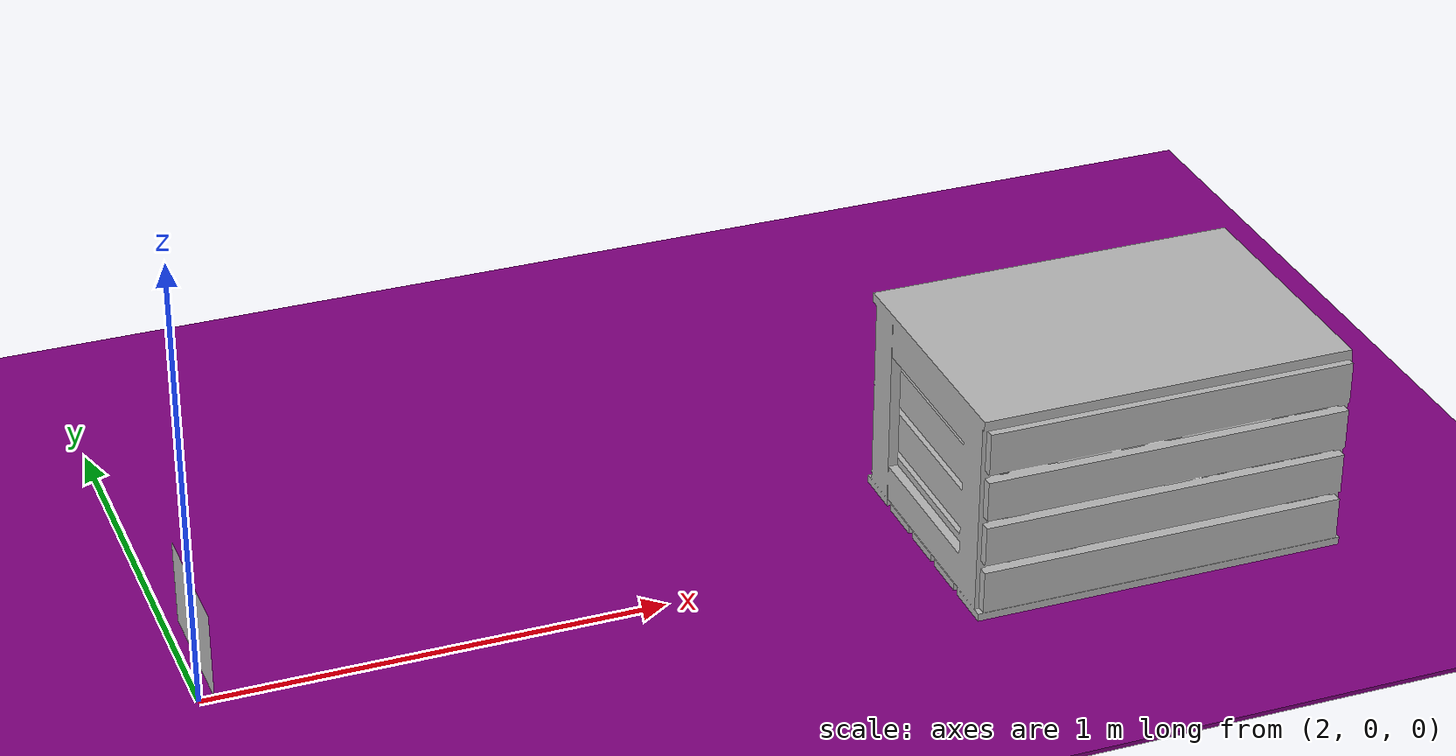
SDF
<?xml version="1.0"?>
<sdf version='1.8'>
  <world name="ground_plane">
    <!-- Basic world setup  -->
    <plugin name='ignition::gazebo::systems::Physics' filename='ignition-gazebo-physics-system' />
    <plugin name='ignition::gazebo::systems::UserCommands' filename='ignition-gazebo-user-commands-system' />
    <plugin name='ignition::gazebo::systems::SceneBroadcaster' filename='ignition-gazebo-scene-broadcaster-system' />
    <plugin name='ignition::gazebo::systems::Contact' filename='ignition-gazebo-contact-system' />
    <plugin name="ignition::gazebo::systems::Sensors" filename="ignition-gazebo-sensors-system" >
      <render_engine>ogre2</render_engine>
    </plugin>
    <plugin name="ignition::gazebo::systems::Imu" filename="ignition-gazebo-imu-system" />
    <light name="sun" type="directional">
      <cast_shadows>1</cast_shadows>
      <pose>0 0 10 0 -0 0</pose>
      <diffuse>0.8 0.8 0.8 1</diffuse>
      <specular>0.2 0.2 0.2 1</specular>
      <attenuation>
        <range>1000</range>
        <constant>0.9</constant>
        <linear>0.01</linear>
        <quadratic>0.001</quadratic>
      </attenuation>
      <direction>-0.5 0.1 -0.9</direction>
    </light>
    <gravity>0 0 -9.81</gravity>
    <magnetic_field>6e-06 2.3e-05 -4.2e-05</magnetic_field>
    <atmosphere type="adiabatic"/>
    <physics name="default_physics" type="ignored">
      <max_step_size>0.01</max_step_size>
      <real_time_factor>1</real_time_factor>
      <real_time_update_rate>100</real_time_update_rate>
    </physics>
    <scene>
      <ambient>1.0 1.0 1.0</ambient>
      <background>0.8 0.8 0.8</background>
      <shadows>1</shadows>
    </scene>

    <!-- Initialise spherical coordinates somewhere -->
    <spherical_coordinates>
      <latitude_deg>0.0</latitude_deg>
      <longitude_deg>0.0</longitude_deg>
      <elevation>10.0</elevation>
      <heading_deg>0</heading_deg>
      <surface_model>EARTH_WGS84</surface_model>
    </spherical_coordinates>

    <!-- Small ground plane with grass texture -->
    <include>
      <uri>
        model://basic_plane
      </uri>
      <name>basic_plane</name>
      <pose>0 0 0 0 0 0</pose>
    </include>

    <include>
      <uri>
        model://small_crate
      </uri>
      <name>small_crate</name>
      <pose>4 0 0 0 0 0</pose>
    </include>

    <include>
      <uri>
        model://aruco_2
      </uri>
      <name>aruco_board</name>
      <pose>2 0 0.2 1.57079632679 0 -1.57079632679</pose>
    </include>

  </world>
</sdf>

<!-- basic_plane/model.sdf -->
<sdf version="1.7">
<model name="basic_plane">
    <static>true</static>
    <link name="link">
        <collision name="collision">
            <geometry>
                <box>
                    <size>10 10 0.01</size>
                </box>
            </geometry>
        </collision>
        <visual name="visual">
            <cast_shadows>false</cast_shadows>
            <geometry>
                <box>
                    <size>10 10 0.01</size>
                </box>
            </geometry>
            <material>
                <ambient>0.5 0.0 0.5 1</ambient>
                <diffuse>0.5 0.0 0.5 1</diffuse>
                <specular>0.2 0.2 0.2 1</specular>
            </material>
        </visual>
    </link>
</model>
</sdf>

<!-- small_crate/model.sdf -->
<sdf version="1.7">
  <model name="small_crate">
    <static>true</static>
    <link name="small_crate_link">
      <collision name="small_crate_collision">
        <geometry>
          <mesh>
            <uri>model://small_crate/small_crate.dae</uri>
            <scale>1 1 1</scale>
          </mesh>
        </geometry>
      </collision>
      <visual name="small_crate_visual">
        <geometry>
          <mesh>
            <uri>model://small_crate/small_crate.dae</uri>
            <scale>1 1 1</scale>
          </mesh>
        </geometry>
      </visual>
    </link>
  </model>
</sdf>

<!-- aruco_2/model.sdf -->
<sdf version="1.7">
  <model name="aruco_2">
    <static>true</static>
    <link name="aruco_2_link">
      <collision name="aruco_2_collision">
        <geometry>
          <mesh>
            <uri>model://aruco_2/model.dae</uri>
            <scale>1 1 1</scale>
          </mesh>
        </geometry>
      </collision>
      <visual name="aruco_2_visual">
        <geometry>
          <mesh>
            <uri>model://aruco_2/model.dae</uri>
            <scale>1 1 1</scale>
          </mesh>
        </geometry>
      </visual>
    </link>
  </model>
</sdf>
